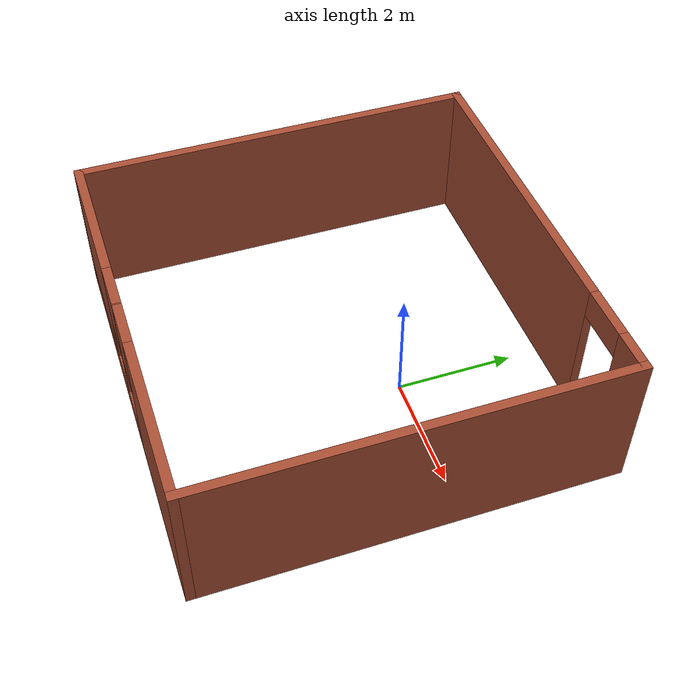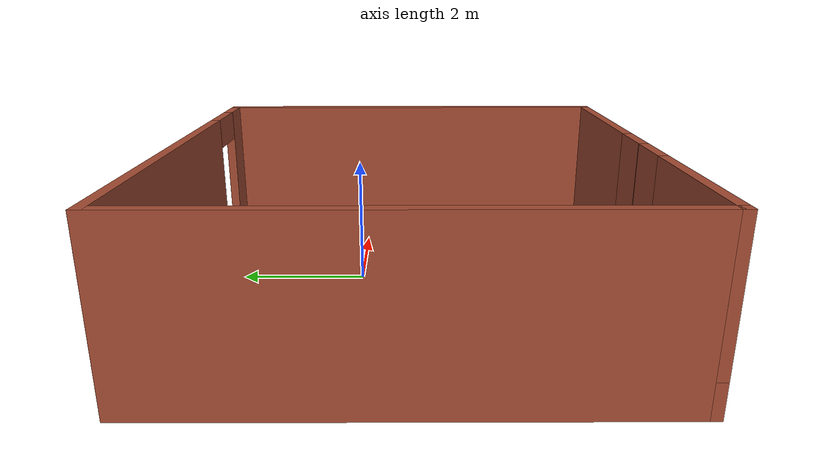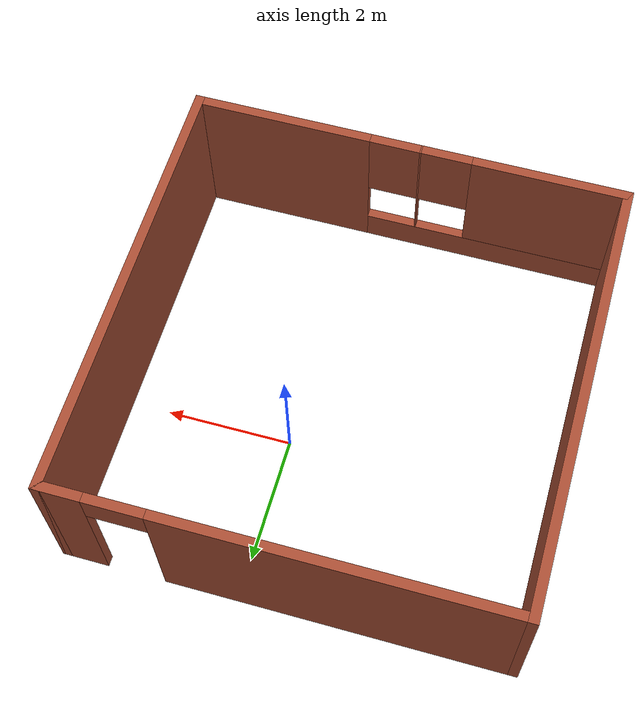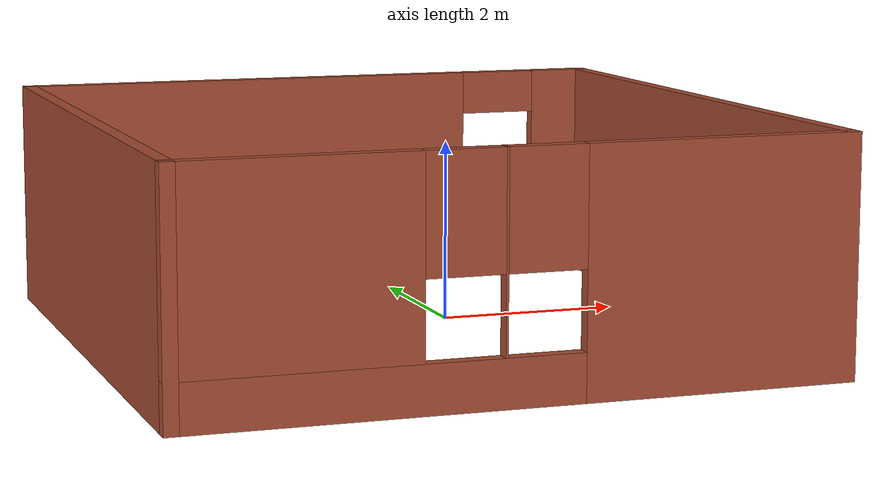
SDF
<?xml version='1.0'?>
<sdf version='1.7'>
  <model name='building'>
    <pose>-0.740842 -0.826236 0 0 -0 0</pose>
    <link name='Wall_0'>
      <collision name='Wall_0_Collision'>
        <geometry>
          <box>
            <size>7 0.15 2.5</size>
          </box>
        </geometry>
        <pose>0 0 1.25 0 -0 0</pose>
      </collision>
      <visual name='Wall_0_Visual'>
        <pose>0 0 1.25 0 -0 0</pose>
        <geometry>
          <box>
            <size>7 0.15 2.5</size>
          </box>
        </geometry>
        <material>
          <script>
            <uri>file://media/materials/scripts/gazebo.material</uri>
            <name>Gazebo/Bricks</name>
          </script>
          <ambient>1 1 1 1</ambient>
        </material>
        <meta>
          <layer>0</layer>
        </meta>
      </visual>
      <pose>-3.425 0 0 0 -0 1.5708</pose>
    </link>
    <link name='Wall_1'>
      <pose>0 3.425 0 0 -0 0</pose>
      <visual name='Wall_1_Visual_0'>
        <pose>-0.814679 0 1.25 0 -0 0</pose>
        <geometry>
          <box>
            <size>5.37064 0.15 2.5</size>
          </box>
        </geometry>
        <material>
          <script>
            <uri>file://media/materials/scripts/gazebo.material</uri>
            <name>Gazebo/Bricks</name>
          </script>
          <ambient>1 1 1 1</ambient>
        </material>
        <meta>
          <layer>0</layer>
        </meta>
      </visual>
      <collision name='Wall_1_Collision_0'>
        <geometry>
          <box>
            <size>5.37064 0.15 2.5</size>
          </box>
        </geometry>
        <pose>-0.814679 0 1.25 0 -0 0</pose>
      </collision>
      <visual name='Wall_1_Visual_1'>
        <pose>3.13532 0 1.25 0 -0 0</pose>
        <geometry>
          <box>
            <size>0.729357 0.15 2.5</size>
          </box>
        </geometry>
        <material>
          <script>
            <uri>file://media/materials/scripts/gazebo.material</uri>
            <name>Gazebo/Bricks</name>
          </script>
          <ambient>1 1 1 1</ambient>
        </material>
        <meta>
          <layer>0</layer>
        </meta>
      </visual>
      <collision name='Wall_1_Collision_1'>
        <geometry>
          <box>
            <size>0.729357 0.15 2.5</size>
          </box>
        </geometry>
        <pose>3.13532 0 1.25 0 -0 0</pose>
      </collision>
      <visual name='Wall_1_Visual_2'>
        <pose>2.32064 0 2.25 0 -0 0</pose>
        <geometry>
          <box>
            <size>0.9 0.15 0.5</size>
          </box>
        </geometry>
        <material>
          <script>
            <uri>file://media/materials/scripts/gazebo.material</uri>
            <name>Gazebo/Bricks</name>
          </script>
          <ambient>1 1 1 1</ambient>
        </material>
        <meta>
          <layer>0</layer>
        </meta>
      </visual>
      <collision name='Wall_1_Collision_2'>
        <geometry>
          <box>
            <size>0.9 0.15 0.5</size>
          </box>
        </geometry>
        <pose>2.32064 0 2.25 0 -0 0</pose>
      </collision>
    </link>
    <link name='Wall_2'>
      <collision name='Wall_2_Collision'>
        <geometry>
          <box>
            <size>7 0.15 2.5</size>
          </box>
        </geometry>
        <pose>0 0 1.25 0 -0 0</pose>
      </collision>
      <visual name='Wall_2_Visual'>
        <pose>0 0 1.25 0 -0 0</pose>
        <geometry>
          <box>
            <size>7 0.15 2.5</size>
          </box>
        </geometry>
        <material>
          <script>
            <uri>file://media/materials/scripts/gazebo.material</uri>
            <name>Gazebo/Bricks</name>
          </script>
          <ambient>1 1 1 1</ambient>
        </material>
        <meta>
          <layer>0</layer>
        </meta>
      </visual>
      <pose>3.425 0 0 0 -0 -1.5708</pose>
    </link>
    <link name='Wall_3'>
      <pose>0 -3.425 0 0 -0 3.14159</pose>
      <visual name='Wall_3_Visual_0'>
        <pose>-2.05961 0 1.25 0 -0 0</pose>
        <geometry>
          <box>
            <size>2.88077 0.15 2.5</size>
          </box>
        </geometry>
        <material>
          <script>
            <uri>file://media/materials/scripts/gazebo.material</uri>
            <name>Gazebo/Bricks</name>
          </script>
          <ambient>1 1 1 1</ambient>
        </material>
        <meta>
          <layer>0</layer>
        </meta>
      </visual>
      <collision name='Wall_3_Collision_0'>
        <geometry>
          <box>
            <size>2.88077 0.15 2.5</size>
          </box>
        </geometry>
        <pose>-2.05961 0 1.25 0 -0 0</pose>
      </collision>
      <visual name='Wall_3_Visual_1'>
        <pose>1.44039 0 0.25 0 -0 0</pose>
        <geometry>
          <box>
            <size>4.11923 0.15 0.5</size>
          </box>
        </geometry>
        <material>
          <script>
            <uri>file://media/materials/scripts/gazebo.material</uri>
            <name>Gazebo/Bricks</name>
          </script>
          <ambient>1 1 1 1</ambient>
        </material>
        <meta>
          <layer>0</layer>
        </meta>
      </visual>
      <collision name='Wall_3_Collision_1'>
        <geometry>
          <box>
            <size>4.11923 0.15 0.5</size>
          </box>
        </geometry>
        <pose>1.44039 0 0.25 0 -0 0</pose>
      </collision>
      <visual name='Wall_3_Visual_2'>
        <pose>0.193076 0 1.5 0 -0 0</pose>
        <geometry>
          <box>
            <size>0.024606 0.15 2</size>
          </box>
        </geometry>
        <material>
          <script>
            <uri>file://media/materials/scripts/gazebo.material</uri>
            <name>Gazebo/Bricks</name>
          </script>
          <ambient>1 1 1 1</ambient>
        </material>
        <meta>
          <layer>0</layer>
        </meta>
      </visual>
      <collision name='Wall_3_Collision_2'>
        <geometry>
          <box>
            <size>0.024606 0.15 2</size>
          </box>
        </geometry>
        <pose>0.193076 0 1.5 0 -0 0</pose>
      </collision>
      <visual name='Wall_3_Visual_3'>
        <pose>2.25269 0 1.5 0 -0 0</pose>
        <geometry>
          <box>
            <size>2.49462 0.15 2</size>
          </box>
        </geometry>
        <material>
          <script>
            <uri>file://media/materials/scripts/gazebo.material</uri>
            <name>Gazebo/Bricks</name>
          </script>
          <ambient>1 1 1 1</ambient>
        </material>
        <meta>
          <layer>0</layer>
        </meta>
      </visual>
      <collision name='Wall_3_Collision_3'>
        <geometry>
          <box>
            <size>2.49462 0.15 2</size>
          </box>
        </geometry>
        <pose>2.25269 0 1.5 0 -0 0</pose>
      </collision>
      <visual name='Wall_3_Visual_4'>
        <pose>-0.219227 0 1.9 0 -0 0</pose>
        <geometry>
          <box>
            <size>0.8 0.15 1.2</size>
          </box>
        </geometry>
        <material>
          <script>
            <uri>file://media/materials/scripts/gazebo.material</uri>
            <name>Gazebo/Bricks</name>
          </script>
          <ambient>1 1 1 1</ambient>
        </material>
        <meta>
          <layer>0</layer>
        </meta>
      </visual>
      <collision name='Wall_3_Collision_4'>
        <geometry>
          <box>
            <size>0.8 0.15 1.2</size>
          </box>
        </geometry>
        <pose>-0.219227 0 1.9 0 -0 0</pose>
      </collision>
      <visual name='Wall_3_Visual_5'>
        <pose>0.605379 0 1.9 0 -0 0</pose>
        <geometry>
          <box>
            <size>0.8 0.15 1.2</size>
          </box>
        </geometry>
        <material>
          <script>
            <uri>file://media/materials/scripts/gazebo.material</uri>
            <name>Gazebo/Bricks</name>
          </script>
          <ambient>1 1 1 1</ambient>
        </material>
        <meta>
          <layer>0</layer>
        </meta>
      </visual>
      <collision name='Wall_3_Collision_5'>
        <geometry>
          <box>
            <size>0.8 0.15 1.2</size>
          </box>
        </geometry>
        <pose>0.605379 0 1.9 0 -0 0</pose>
      </collision>
    </link>
    <static>1</static>
  </model>
</sdf>
